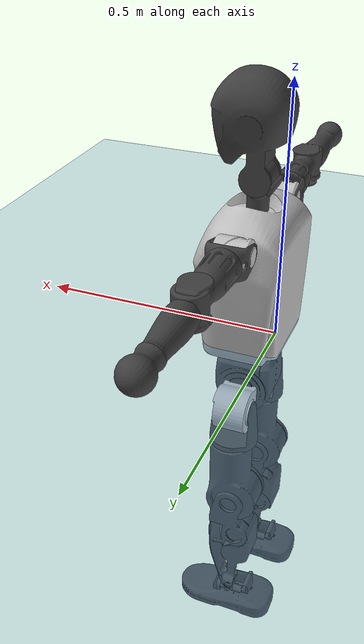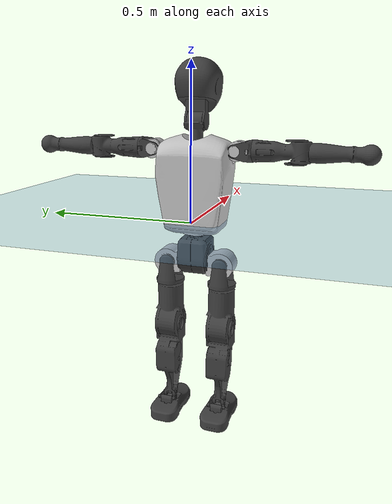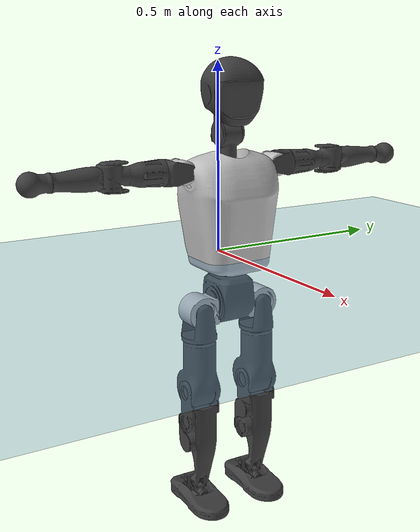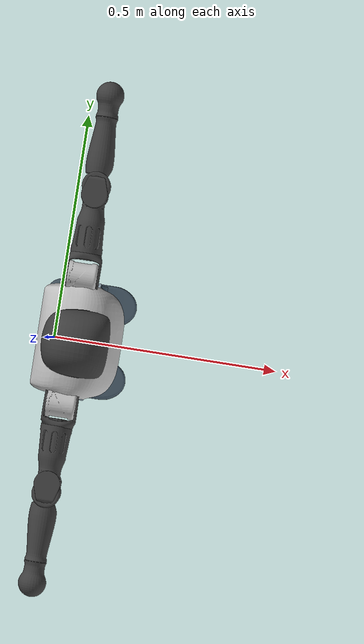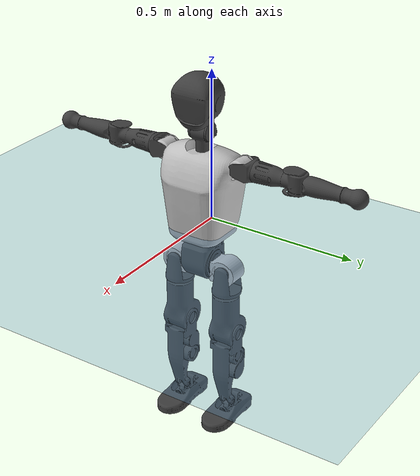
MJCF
<mujoco model="T1">
  <compiler angle="radian" assetdir="assets" balanceinertia="true" inertiafromgeom="false"/>

  <option timestep="0.005" density="1.2" viscosity="2e-05"/>

  <size nkey="1"/>

  <visual>
    <quality shadowsize="8192"/>
    <map shadowclip="0.5"/>
  </visual>

  <default>
    <default class="/">
      <joint armature="0.01" damping="0.01" frictionloss="0.1"/>
      <geom contype="0" conaffinity="0" group="1" solref="-1000 -80"/>
      <site size="0.01 0.005 0.005" group="5"/>
      <general forcelimited="true" biastype="affine" gainprm="25" biasprm="0 -25 -0.6"/>
      <default class="t1">
        <geom rgba="0.25 0.25 0.25 1"/>
        <default class="visual">
          <geom type="mesh" group="2"/>
        </default>
        <default class="collision">
          <geom group="3"/>
        </default>
        <default class="foot">
          <geom size="0.1115 0.05 0.015" type="box" condim="6" group="4" priority="1" solimp="0.015 1 0.015"/>
        </default>
        <default class="reward_collision_sphere">
          <geom group="5" rgba="1 0 0 1"/>
        </default>
      </default>
    </default>
  </default>

  <asset>
    <texture type="skybox" colorspace="auto" name="//unnamed_texture_0" builtin="gradient" rgb1="0.95 0.95 0.95" rgb2="0.95 0.95 0.95" width="100" height="600"/>
    <texture type="2d" colorspace="auto" name="texplane" builtin="checker" rgb1="0.345 0.575 0.748" rgb2="0.345 0.575 0.748" markrgb="1 1 1" width="512" height="512"/>
    <material name="MatPlane" class="/" texture="texplane" texuniform="true" texrepeat="2 2" specular="0.9"/>
    <mesh name="Trunk" class="/" file="Trunk.stl"/>
    <mesh name="H1" class="/" file="H1.stl"/>
    <mesh name="H2" class="/" file="H2.stl"/>
    <mesh name="AL1" class="/" file="AL1.stl"/>
    <mesh name="AL2" class="/" file="AL2.stl"/>
    <mesh name="AL3" class="/" file="AL3.stl"/>
    <mesh name="left_hand_link" class="/" file="left_hand_link.stl"/>
    <mesh name="AR1" class="/" file="AR1.stl"/>
    <mesh name="AR2" class="/" file="AR2.stl"/>
    <mesh name="AR3" class="/" file="AR3.stl"/>
    <mesh name="right_hand_link" class="/" file="right_hand_link.stl"/>
    <mesh name="Waist" class="/" file="Waist.stl"/>
    <mesh name="Hip_Pitch_Left" class="/" file="Hip_Pitch_Left.stl"/>
    <mesh name="Hip_Roll_Left" class="/" file="Hip_Roll_Left.stl"/>
    <mesh name="Hip_Yaw_Left" class="/" file="Hip_Yaw_Left.stl"/>
    <mesh name="Shank_Left" class="/" file="Shank_Left.stl"/>
    <mesh name="Ankle_Cross_Left" class="/" file="Ankle_Cross_Left.stl"/>
    <mesh name="left_foot_link" class="/" file="left_foot_link.stl"/>
    <mesh name="Hip_Pitch_Right" class="/" file="Hip_Pitch_Right.stl"/>
    <mesh name="Hip_Roll_Right" class="/" file="Hip_Roll_Right.stl"/>
    <mesh name="Hip_Yaw_Right" class="/" file="Hip_Yaw_Right.stl"/>
    <mesh name="Shank_Right" class="/" file="Shank_Right.stl"/>
    <mesh name="Ankle_Cross_Right" class="/" file="Ankle_Cross_Right.stl"/>
    <mesh name="right_foot_link" class="/" file="right_foot_link.stl"/>
  </asset>

  <worldbody>
    <geom name="floor" class="/" size="100 100 0.125" type="plane" group="0" material="MatPlane"/>
    <light name="toplight_shadow" class="/" pos="0 0 5" dir="0.0990148 0.0990148 -0.990148" type="directional" ambient="0.04 0.04 0.04" diffuse="0.55 0.55 0.55" specular="0.12 0.12 0.12"/>
    <light name="toplight_fill" class="/" pos="0 0 5" dir="0.0990148 0.0990148 -0.990148" type="directional" castshadow="false" ambient="0.04 0.04 0.04" diffuse="0.3 0.3 0.3" specular="0.08 0.08 0.08"/>
    <body name="trunk" childclass="t1" pos="0.000682218 0.000312339 -0.00092776" quat="1 0.000344787 0.000112918 0.000286277">
      <inertial pos="0.0445683 -5.02951e-05 0.110654" quat="0.999935 0.000477548 -0.0113169 0.0008992" mass="8.83816" diaginertia="0.033452 0.0367294 0.0738766"/>
      <joint name="//unnamed_joint_0" type="free" armature="0" damping="0" frictionloss="0"/>
      <geom name="//unnamed_geom_1" class="visual" rgba="0.76 0.76 0.76 1" mesh="Trunk"/>
      <geom name="//unnamed_geom_2" class="collision" size="0.0685051 0.0913402 0.13701" pos="0.0490735 0 0.127204" type="box"/>
      <geom name="//unnamed_geom_3" class="reward_collision_sphere" size="0.105041" pos="0.0490735 0 0.106003"/>
      <geom name="//unnamed_geom_4" class="reward_collision_sphere" size="0.013701" pos="0.0490735 0.0732938 0"/>
      <geom name="//unnamed_geom_5" class="reward_collision_sphere" size="0.013701" pos="0.0490735 -0.0732938 0"/>
      <geom name="//unnamed_geom_6" class="reward_collision_sphere" size="0.013701" pos="0.0490735 0.0922639 0.190806"/>
      <geom name="//unnamed_geom_7" class="reward_collision_sphere" size="0.013701" pos="0.0490735 -0.0922639 0.190806"/>
      <site name="imu" pos="0.0043208 -0.00126857 -0.00157009" size="0.00913402"/>
      <camera name="track" pos="0 -1.72456 0" quat="0.707107 0.707107 0 0" mode="trackcom"/>
      <camera name="ego_camera" pos="0.0997828 0 0.445215" quat="-0.5 -0.5 0.5 0.5"/>
      <body name="H1" pos="0.0507509 -0.000745675 0.256968" quat="1 0.000169986 0.000379446 0.000246872">
        <inertial pos="-0.00189285 -0.00166164 0.0599396" quat="0.760224 -0.0136382 0.00030636 0.649518" mass="0.34065" diaginertia="8.93876e-05 0.000106093 0.000203961"/>
        <joint name="AAHead_yaw" pos="0 0 0" axis="0.00143569 -8.64876e-05 0.999999" range="-1.55358 1.5811" armature="0.00873129" damping="0.00770274" frictionloss="0.094433"/>
        <geom name="//unnamed_geom_8" class="visual" mesh="H1"/>
        <body name="H2" pos="-0.000776532 -0.000709031 0.0652281" quat="1 8.71261e-05 7.97367e-05 3.81445e-05">
          <inertial pos="0.00563906 -0.000225349 0.104422" quat="0.988636 0.106528 -0.0739665 -0.0760238" mass="0.483309" diaginertia="0.00074641 0.000909154 0.00231817"/>
          <joint name="Head_pitch" pos="0 0 0" axis="-0.000372935 -0.999999 0.00135472" range="-1.2318 0.332334" armature="0.00937314" damping="0.005332" frictionloss="0.0937527"/>
          <geom name="//unnamed_geom_9" class="visual" mesh="H2"/>
          <geom name="//unnamed_geom_10" class="collision" size="0.0730721" pos="0.00817891 0 0.116604"/>
          <geom name="//unnamed_geom_11" class="reward_collision_sphere" size="0.0822062" pos="0.0163578 0 0.106003"/>
        </body>
      </body>
      <body name="AL1" pos="0.0479508 0.0929354 0.232735" quat="1 7.87831e-05 0.000495332 4.33403e-05">
        <inertial pos="-0.000314441 0.0387225 -0.000929073" quat="0.504655 0.495404 -0.506086 0.493736" mass="0.410563" diaginertia="0.000510544 0.000627298 0.000396018"/>
        <joint name="Left_Shoulder_Pitch" pos="0 0 0" axis="0.00250542 0.999996 0.000877942" range="-3.30928 1.23227" armature="0.00904084" damping="0.0047206" frictionloss="0.0931736"/>
        <geom name="//unnamed_geom_12" class="visual" rgba="0.76 0.76 0.76 1" mesh="AL1"/>
        <body name="AL2" pos="0.000465582 0.0415431 0.000456357" quat="1 0.000238427 -5.40452e-05 0.000588721">
          <inertial pos="0.00302467 0.0314254 -0.000189633" quat="0.487727 0.511781 -0.488298 0.511633" mass="0.122561" diaginertia="0.000147101 0.000166254 0.000237294"/>
          <joint name="Left_Shoulder_Roll" pos="0 0 0" axis="-0.999998 0.00109183 -0.00165524" range="-1.56509 1.73824" armature="0.0094471" damping="0.00177076" frictionloss="0.0927932"/>
          <geom name="//unnamed_geom_13" class="visual" mesh="AL2"/>
          <body name="AL3" pos="0.000273164 0.0536965 -0.000355137" quat="1 0.000182639 1.85171e-05 -4.83575e-05">
            <inertial pos="-0.000146392 0.0736939 0.000272761" quat="0.703559 0.710633 -0.00234984 -0.000153072" mass="0.798893" diaginertia="0.00475741 0.00617006 0.000830007"/>
            <joint name="Left_Elbow_Pitch" pos="0 0 0" axis="0.00163538 -0.999998 0.00151777" range="-2.24857 2.25102" armature="0.00937211" damping="0.00250041" frictionloss="0.0889792"/>
            <geom name="//unnamed_geom_14" class="visual" mesh="AL3"/>
            <geom name="//unnamed_geom_15" class="collision" size="0.0274021 0.0685051" pos="0 0.043114 0" quat="0.707105 0.707108 0 0" type="cylinder"/>
            <geom name="//unnamed_geom_16" class="reward_collision_sphere" size="0.0328825"/>
            <body name="left_hand_link" pos="-0.000403617 0.127281 6.89889e-05" quat="1 0.000225686 -0.000367417 -1.37171e-05">
              <inertial pos="-5.90581e-05 0.0945574 0.00069882" quat="0.708198 0.706012 2.29024e-05 0.00153207" mass="0.246176" diaginertia="0.00295102 0.00384793 0.00028876"/>
              <joint name="Left_Elbow_Yaw" pos="0 0 0" axis="0.00021422 0.00178962 0.999998" range="-2.44172 -0.00076873" armature="0.00917219" damping="0.0106465" frictionloss="0.087098"/>
              <geom name="//unnamed_geom_17" class="visual" mesh="left_hand_link"/>
              <geom name="//unnamed_geom_18" class="collision" size="0.0274021 0.0799227" pos="0 0.112096 0" quat="0.707105 0.707108 0 0" type="cylinder"/>
              <geom name="//unnamed_geom_19" class="reward_collision_sphere" size="0.0456701"/>
              <geom name="//unnamed_geom_20" class="reward_collision_sphere" size="0.0319691" pos="0 0.0948507 0"/>
              <geom name="//unnamed_geom_21" class="reward_collision_sphere" size="0.0319691" pos="0 0.18539 0"/>
            </body>
          </body>
        </body>
      </body>
      <body name="AR1" pos="0.0461514 -0.0916183 0.231993" quat="1 0.000146057 0.000160547 -7.79618e-06">
        <inertial pos="-0.00143245 -0.0394021 0.000374152" quat="0.505019 0.495001 -0.504953 0.494927" mass="0.403601" diaginertia="0.00050555 0.000616459 0.000391275"/>
        <joint name="Right_Shoulder_Pitch" pos="0 0 0" axis="0.000657077 -1 -0.00069156" stiffness="0.000717299" range="-1.2268 3.30971" armature="0.00957353" damping="0.00484527" frictionloss="0.0932435"/>
        <geom name="//unnamed_geom_22" class="visual" rgba="0.76 0.76 0.76 1" mesh="AR1"/>
        <body name="AR2" pos="-0.0011374 -0.0400045 0.00028208" quat="1 1.89876e-05 -6.19978e-06 1.48077e-05">
          <inertial pos="0.00271018 -0.032737 -0.000169941" quat="0.515507 0.486842 -0.511352 0.485548" mass="0.120591" diaginertia="0.000148237 0.000163371 0.000236503"/>
          <joint name="Right_Shoulder_Roll" pos="0 0 0" axis="-0.999988 -0.00216484 -0.00447072" stiffness="0.000807709" range="-1.73985 1.57635" armature="0.00910918" damping="0.00435414" frictionloss="0.0907605"/>
          <geom name="//unnamed_geom_23" class="visual" mesh="AR2"/>
          <body name="AR3" pos="-0.00103074 -0.0525641 0.000990864" quat="1 0.000171458 0.000139521 -5.23677e-06">
            <inertial pos="-0.000928599 -0.0727344 -0.000365826" quat="0.707814 0.706398 -0.000174273 -0.000888055" mass="0.772188" diaginertia="0.00468103 0.00602138 0.000817534"/>
            <joint name="Right_Elbow_Pitch" pos="0 0 0" axis="0.000236864 0.999996 0.00293931" range="-2.2688 2.27313" armature="0.00937044" damping="0.00829423" frictionloss="0.089538"/>
            <geom name="//unnamed_geom_24" class="visual" mesh="AR3"/>
            <geom name="//unnamed_geom_25" class="collision" size="0.0274021 0.0685051" pos="0 -0.043114 0" quat="0.707105 0.707108 0 0" type="cylinder"/>
            <geom name="//unnamed_geom_26" class="reward_collision_sphere" size="0.0328825"/>
            <body name="right_hand_link" pos="-0.0004132 -0.126548 -0.000463422" quat="1 5.01825e-06 7.3076e-05 0.000283768">
              <inertial pos="-0.000852881 -0.0942 -4.27611e-05" quat="0.704145 0.71005 -0.00138643 -0.00275061" mass="0.253242" diaginertia="0.00296607 0.00387535 0.000283882"/>
              <joint name="Right_Elbow_Yaw" pos="0 0 0" axis="0.00343822 -0.00392925 0.999986" range="-0.0094539 2.45655" armature="0.00888714" damping="0.00936782" frictionloss="0.0914657"/>
              <geom name="//unnamed_geom_27" class="visual" mesh="right_hand_link"/>
              <geom name="//unnamed_geom_28" class="collision" size="0.0274021 0.0799227" pos="0 -0.112096 0" quat="0.707105 0.707108 0 0" type="cylinder"/>
              <geom name="//unnamed_geom_29" class="reward_collision_sphere" size="0.0456701"/>
              <geom name="//unnamed_geom_30" class="reward_collision_sphere" size="0.0319691" pos="0 -0.0948507 0"/>
              <geom name="//unnamed_geom_31" class="reward_collision_sphere" size="0.0319691" pos="0 -0.18539 0"/>
            </body>
          </body>
        </body>
      </body>
      <body name="Waist" pos="0.0506379 -0.00102509 -0.121731" quat="1 0.000312066 -0.000344344 -7.78775e-05">
        <inertial pos="0.00186054 -0.000771022 0.00686293" quat="0.983597 -0.00125136 -0.180236 0.0070353" mass="1.98839" diaginertia="0.00197154 0.00252422 0.00633891"/>
        <joint name="Waist" pos="0 0 0" axis="0.000606349 2.27468e-05 1" range="-1.56774 1.57269" armature="0.00889281" damping="0.0128051" frictionloss="0.0916833"/>
        <geom name="//unnamed_geom_32" class="visual" mesh="Waist"/>
        <body name="Hip_Pitch_Left" pos="-0.000205351 0.0916372 0.000901252" quat="1 2.41415e-05 -3.353e-05 -6.87613e-06">
          <inertial pos="0.00174477 -0.00738237 -0.0197572" quat="0.975665 0.218961 0.0115901 -0.00074287" mass="0.772041" diaginertia="0.000659779 0.000697541 0.00166769"/>
          <joint name="Left_Hip_Pitch" pos="0 0 0" axis="0.000334528 0.999999 -0.00138106" stiffness="0.00128863" range="-1.80483 1.57855" armature="0.00911771" damping="0.00439182" frictionloss="0.0890386"/>
          <geom name="//unnamed_geom_33" class="visual" rgba="0.76 0.76 0.76 1" mesh="Hip_Pitch_Left"/>
          <body name="Hip_Roll_Left" pos="0.000262382 -0.000106095 -0.021098" quat="1 5.51756e-05 0.00037125 0.000237994">
            <inertial pos="0.00194188 -0.000156946 -0.0568745" quat="0.705962 -0.00453404 -0.00857813 0.708183" mass="0.287773" diaginertia="0.000634089 0.000714297 0.00067624"/>
            <joint name="Left_Hip_Roll" pos="0 0 0" axis="-0.999992 6.36613e-05 -0.00410137" stiffness="0.00188477" range="-1.5669 0.186769" armature="0.00903839" damping="0.0111068" frictionloss="0.09444"/>
            <geom name="//unnamed_geom_34" class="visual" mesh="Hip_Roll_Left"/>
            <geom name="//unnamed_geom_35" class="reward_collision_sphere" size="0.0502371"/>
            <body name="Hip_Yaw_Left" pos="0.00186149 -0.00060826 -0.0877209" quat="1 -2.39191e-06 2.78763e-05 0.000152628">
              <inertial pos="-0.00556341 -0.000585171 -0.0950756" quat="0.697086 -0.0363978 -0.0288991 0.715479" mass="1.67666" diaginertia="0.00952602 0.012275 0.00352912"/>
              <joint name="Left_Hip_Yaw" pos="0 0 0" axis="0.000438741 0.000493191 -1" stiffness="0.00214733" range="-1.02267 1.01459" armature="0.00916484" damping="0.00761855" frictionloss="0.0909552"/>
              <geom name="//unnamed_geom_36" class="visual" mesh="Hip_Yaw_Left"/>
              <geom name="//unnamed_geom_37" class="collision" size="0.0456701 0.0730721" type="cylinder"/>
              <body name="Shank_Left" pos="-0.0114496 0.000506196 -0.142614" quat="1 3.84575e-05 -2.24279e-05 -0.000228031">
                <inertial pos="-0.00458468 -0.000253977 -0.131878" quat="0.997657 0.000179063 -0.0226998 0.064536" mass="1.32304" diaginertia="0.0129168 0.016472 0.00252788"/>
                <joint name="Left_Knee_Pitch" pos="0 0 0" axis="1.96778e-05 1 -0.000218013" range="-0.0200408 2.34186" armature="0.00899783" damping="0.00427321" frictionloss="0.097826"/>
                <geom name="//unnamed_geom_38" class="visual" mesh="Shank_Left"/>
                <geom name="//unnamed_geom_39" class="collision" size="0.0456701 0.0685051" pos="0 0 -0.127204" type="cylinder"/>
                <geom name="//unnamed_geom_40" class="reward_collision_sphere" size="0.0593711"/>
                <body name="Ankle_Cross_Left" pos="-0.000343451 8.0329e-05 -0.296251" quat="1 3.91549e-05 0.000143204 4.92493e-05">
                  <inertial pos="-0.00263006 0.000309829 -0.00942056" quat="0.444681 0.549204 0.551822 0.442862" mass="0.05523" diaginertia="1.03903e-05 1.1882e-05 1.48668e-05"/>
                  <joint name="Left_Ankle_Pitch" pos="0 0 0" axis="0.00199868 0.999987 0.0046719" range="-0.859042 0.344667" armature="0.00915679" damping="0.00758038" frictionloss="0.0953078"/>
                  <geom name="//unnamed_geom_41" class="visual" mesh="Ankle_Cross_Left"/>
                  <body name="left_foot_link" pos="-0.000611681 -0.000961444 -0.0125242" quat="1 0.0002406 0.00048148 8.71936e-05">
                    <inertial pos="0.000260387 -1.94654e-05 -0.0090365" quat="0.000400863 0.621495 -0.000667772 0.783418" mass="0.51638" diaginertia="0.000978782 0.00112378 0.00291239"/>
                    <joint name="Left_Ankle_Roll" pos="0 0 0" axis="-0.999999 0.00124066 0.00120151" range="-0.446057 0.45853" armature="0.00910474" damping="0.00934073" frictionloss="0.0890426"/>
                    <geom name="//unnamed_geom_42" class="visual" mesh="left_foot_link"/>
                    <geom name="left_foot" class="foot" size="0.10234 0.0461124 0.0133525" pos="0.00817891 0 -0.0159005"/>
                    <geom name="//unnamed_geom_44" class="reward_collision_sphere" size="0.0474969" pos="0.00817891 0 -0.0159005"/>
                    <geom name="//unnamed_geom_45" class="reward_collision_sphere" size="0.0274021" pos="0.0776997 -0.0198324 -0.0159005"/>
                    <geom name="//unnamed_geom_46" class="reward_collision_sphere" size="0.0274021" pos="-0.0572524 -0.0198324 -0.0159005"/>
                    <site name="left_foot" class="foot" pos="0.00817891 0 -0.0159005" size="0.00913402"/>
                  </body>
                </body>
              </body>
            </body>
          </body>
        </body>
        <body name="Hip_Pitch_Right" pos="-0.000122361 -0.0907887 -0.000323203" quat="1 4.42088e-05 -5.88856e-06 9.5687e-05">
          <inertial pos="0.00136458 0.00658156 -0.0191417" quat="0.973591 -0.227729 0.015595 -0.00411039" mass="0.77324" diaginertia="0.000656799 0.000690031 0.0016449"/>
          <joint name="Right_Hip_Pitch" pos="0 0 0" axis="-5.10966e-05 -1 -9.38407e-05" range="-1.57313 1.79739" armature="0.00917463" damping="0.00848878" frictionloss="0.0884758"/>
          <geom name="//unnamed_geom_47" class="visual" rgba="0.76 0.76 0.76 1" mesh="Hip_Pitch_Right"/>
          <body name="Hip_Roll_Right" pos="-0.000175359 -0.00048834 -0.0203147" quat="1 0.000229572 4.92102e-05 -2.79438e-05">
            <inertial pos="0.00122391 0.000790986 -0.0565282" quat="0.706326 -0.00159571 -0.00664183 0.707854" mass="0.294832" diaginertia="0.000641354 0.000726622 0.00069734"/>
            <joint name="Right_Hip_Roll" pos="0 0 0" axis="-0.999999 0.00131594 -0.000326296" range="-0.183621 1.56066" armature="0.00868304" damping="0.00767994" frictionloss="0.0955302"/>
            <geom name="//unnamed_geom_48" class="visual" mesh="Hip_Roll_Right"/>
            <geom name="//unnamed_geom_49" class="reward_collision_sphere" size="0.0502371"/>
            <body name="Hip_Yaw_Right" pos="0.000720307 -0.000112258 -0.0873293" quat="1 -4.72876e-05 2.64521e-05 -3.49114e-05">
              <inertial pos="-0.00591705 -0.000495281 -0.0939041" quat="0.713135 -0.032756 -0.0326526 0.6995" mass="1.66843" diaginertia="0.00951573 0.0120878 0.00348678"/>
              <joint name="Right_Hip_Yaw" pos="0 0 0" axis="-0.00130504 0.00287179 -0.999995" stiffness="0.000854803" range="-1.01419 1.00366" armature="0.00869844" damping="0.0111638" frictionloss="0.0891066"/>
              <geom name="//unnamed_geom_50" class="visual" mesh="Hip_Yaw_Right"/>
              <geom name="//unnamed_geom_51" class="collision" size="0.0456701 0.0730721" type="cylinder"/>
              <body name="Shank_Right" pos="-0.0104766 -0.000235366 -0.141472" quat="1 -9.63476e-06 -4.7332e-05 -4.15006e-05">
                <inertial pos="-0.00427926 0.00118653 -0.130334" quat="0.999298 -0.000359047 -0.0206752 -0.0312367" mass="1.38058" diaginertia="0.0132484 0.0169644 0.00269313"/>
                <joint name="Right_Knee_Pitch" pos="0 0 0" axis="-0.00153523 -0.999997 -0.00192517" range="-2.34111 -0.00269894" armature="0.00920843" damping="0.00918871" frictionloss="0.0873894"/>
                <geom name="//unnamed_geom_52" class="visual" mesh="Shank_Right"/>
                <geom name="//unnamed_geom_53" class="collision" size="0.0456701 0.0685051" pos="0 0 -0.127204" type="cylinder"/>
                <geom name="//unnamed_geom_54" class="reward_collision_sphere" size="0.0593711"/>
                <body name="Ankle_Cross_Right" pos="-0.000603033 -0.00106242 -0.296943" quat="1 8.66351e-05 -5.59148e-05 5.55133e-05">
                  <inertial pos="-0.00319702 -0.000596284 -0.00858223" quat="0.439972 0.552671 0.549821 0.445732" mass="0.0559202" diaginertia="1.05322e-05 1.22552e-05 1.53457e-05"/>
                  <joint name="Right_Ankle_Pitch" pos="0 0 0" axis="0.000455403 -0.999976 -0.00698044" stiffness="0.0015432" range="-0.342048 0.862837" armature="0.00930519" damping="0.00751612" frictionloss="0.0907307"/>
                  <geom name="//unnamed_geom_55" class="visual" mesh="Ankle_Cross_Right"/>
                  <body name="right_foot_link" pos="-0.000152607 -0.00068842 -0.0132903" quat="1 -0.000135634 -2.75182e-05 -4.93778e-05">
                    <inertial pos="0.000849521 -0.000108762 -0.0104872" quat="-0.00086684 0.619488 0.00149375 0.785004" mass="0.521807" diaginertia="0.0010025 0.00113915 0.00295886"/>
                    <joint name="Right_Ankle_Roll" pos="0 0 0" axis="-0.999999 -0.0012985 -0.000202963" range="-0.439854 0.449595" armature="0.0089434" damping="0.00809799" frictionloss="0.0887008"/>
                    <geom name="//unnamed_geom_56" class="visual" mesh="right_foot_link"/>
                    <geom name="right_foot" class="foot" size="0.0994857 0.0456341 0.0142476" pos="0.00817891 0 -0.0159005"/>
                    <geom name="//unnamed_geom_58" class="reward_collision_sphere" size="0.0365361"/>
                    <geom name="//unnamed_geom_59" class="reward_collision_sphere" size="0.0274021" pos="0.00817891 0 -0.0159005"/>
                    <geom name="//unnamed_geom_60" class="reward_collision_sphere" size="0.0274021" pos="0.0776997 0.0198324 -0.0159005"/>
                    <geom name="//unnamed_geom_61" class="reward_collision_sphere" size="0.0274021" pos="-0.0572524 0.0198324 -0.0159005"/>
                    <site name="right_foot" class="foot" pos="0.00817891 0 -0.0159005" size="0.00913402"/>
                  </body>
                </body>
              </body>
            </body>
          </body>
        </body>
      </body>
    </body>
  </worldbody>

  <contact>
    <pair class="/" geom1="floor" geom2="left_foot" name="//unnamed_contact_0"/>
    <pair class="/" geom1="floor" geom2="right_foot" name="//unnamed_contact_1"/>
  </contact>

  <actuator>
    <general name="AAHead_yaw" class="/" joint="AAHead_yaw" forcerange="-6.36203 6.36203" gainprm="22.8386" biasprm="0 -22.8386 -0.543833"/>
    <general name="Head_pitch" class="/" joint="Head_pitch" forcerange="-6.2683 6.2683" gainprm="22.8386" biasprm="0 -22.8386 -0.543833"/>
    <general name="Left_Shoulder_Pitch" class="/" joint="Left_Shoulder_Pitch" forcerange="-16.3351 16.3351" gainprm="22.8386" biasprm="0 -22.8386 -0.543833"/>
    <general name="Left_Shoulder_Roll" class="/" joint="Left_Shoulder_Roll" forcerange="-16.1086 16.1086" gainprm="22.8386" biasprm="0 -22.8386 -0.543833"/>
    <general name="Left_Elbow_Pitch" class="/" joint="Left_Elbow_Pitch" forcerange="-16.2637 16.2637" gainprm="22.8386" biasprm="0 -22.8386 -0.543833"/>
    <general name="Left_Elbow_Yaw" class="/" joint="Left_Elbow_Yaw" forcerange="-17.2268 17.2268" gainprm="22.8386" biasprm="0 -22.8386 -0.543833"/>
    <general name="Right_Shoulder_Pitch" class="/" joint="Right_Shoulder_Pitch" forcerange="-16.6083 16.6083" gainprm="22.8386" biasprm="0 -22.8386 -0.543833"/>
    <general name="Right_Shoulder_Roll" class="/" joint="Right_Shoulder_Roll" forcerange="-16.1931 16.1931" gainprm="22.8386" biasprm="0 -22.8386 -0.543833"/>
    <general name="Right_Elbow_Pitch" class="/" joint="Right_Elbow_Pitch" forcerange="-15.9479 15.9479" gainprm="22.8386" biasprm="0 -22.8386 -0.543833"/>
    <general name="Right_Elbow_Yaw" class="/" joint="Right_Elbow_Yaw" forcerange="-16.643 16.643" gainprm="22.8386" biasprm="0 -22.8386 -0.543833"/>
    <general name="Waist" class="/" joint="Waist" forcerange="-27.5556 27.5556" gainprm="22.8386" biasprm="0 -22.8386 -0.543833"/>
    <general name="Left_Hip_Pitch" class="/" joint="Left_Hip_Pitch" forcerange="-39.6567 39.6567" gainprm="22.8386" biasprm="0 -22.8386 -0.543833"/>
    <general name="Left_Hip_Roll" class="/" joint="Left_Hip_Roll" forcerange="-26.9759 26.9759" gainprm="22.8386" biasprm="0 -22.8386 -0.543833"/>
    <general name="Left_Hip_Yaw" class="/" joint="Left_Hip_Yaw" forcerange="-27.1898 27.1898" gainprm="22.8386" biasprm="0 -22.8386 -0.543833"/>
    <general name="Left_Knee_Pitch" class="/" joint="Left_Knee_Pitch" forcerange="-54.6914 54.6914" gainprm="22.8386" biasprm="0 -22.8386 -0.543833"/>
    <general name="Left_Ankle_Pitch" class="/" joint="Left_Ankle_Pitch" forcerange="-18.3306 18.3306" gainprm="22.8386" biasprm="0 -22.8386 -0.543833"/>
    <general name="Left_Ankle_Roll" class="/" joint="Left_Ankle_Roll" forcerange="-13.7097 13.7097" gainprm="22.8386" biasprm="0 -22.8386 -0.543833"/>
    <general name="Right_Hip_Pitch" class="/" joint="Right_Hip_Pitch" forcerange="-41.5125 41.5125" gainprm="22.8386" biasprm="0 -22.8386 -0.543833"/>
    <general name="Right_Hip_Roll" class="/" joint="Right_Hip_Roll" forcerange="-27.4395 27.4395" gainprm="22.8386" biasprm="0 -22.8386 -0.543833"/>
    <general name="Right_Hip_Yaw" class="/" joint="Right_Hip_Yaw" forcerange="-27.1027 27.1027" gainprm="22.8386" biasprm="0 -22.8386 -0.543833"/>
    <general name="Right_Knee_Pitch" class="/" joint="Right_Knee_Pitch" forcerange="-56.5922 56.5922" gainprm="22.8386" biasprm="0 -22.8386 -0.543833"/>
    <general name="Right_Ankle_Pitch" class="/" joint="Right_Ankle_Pitch" forcerange="-18.5991 18.5991" gainprm="22.8386" biasprm="0 -22.8386 -0.543833"/>
    <general name="Right_Ankle_Roll" class="/" joint="Right_Ankle_Roll" forcerange="-13.2384 13.2384" gainprm="22.8386" biasprm="0 -22.8386 -0.543833"/>
  </actuator>

  <sensor>
    <gyro site="imu" name="imu_angular_velocity"/>
    <velocimeter site="imu" name="imu_linear_velocity"/>
    <framelinvel objtype="site" objname="left_foot" name="left_foot_global_linear_velocity"/>
    <framelinvel objtype="site" objname="right_foot" name="right_foot_global_linear_velocity"/>
  </sensor>

  <keyframe>
    <key name="home" qpos="0 0 0.6385 1 0 0 0 0 0 0 1.4 0 -0.4 0 -1.4 0 0.4 0 -0.4 0 0 0.8 -0.4 0 0.4 0 0 -0.8 0.4 0"/>
  </keyframe>
</mujoco>
